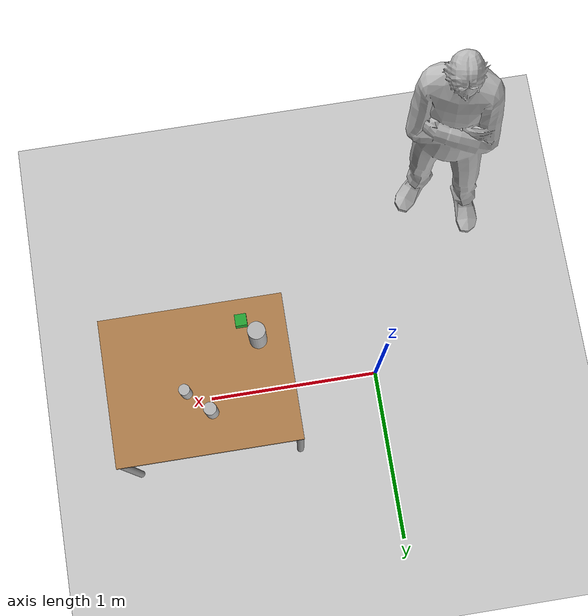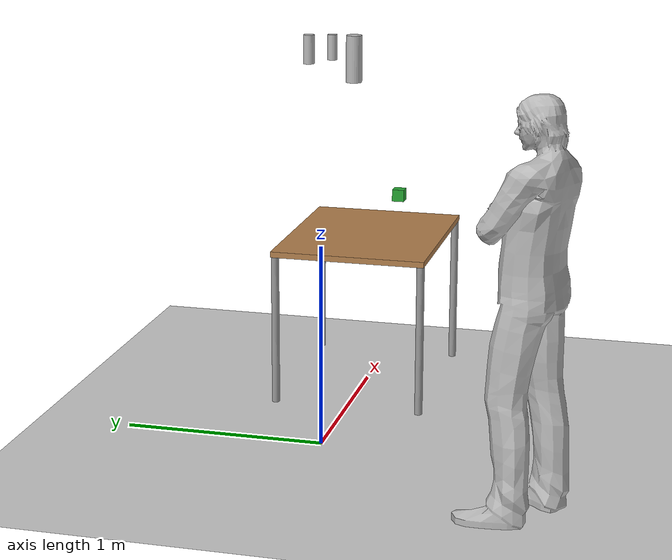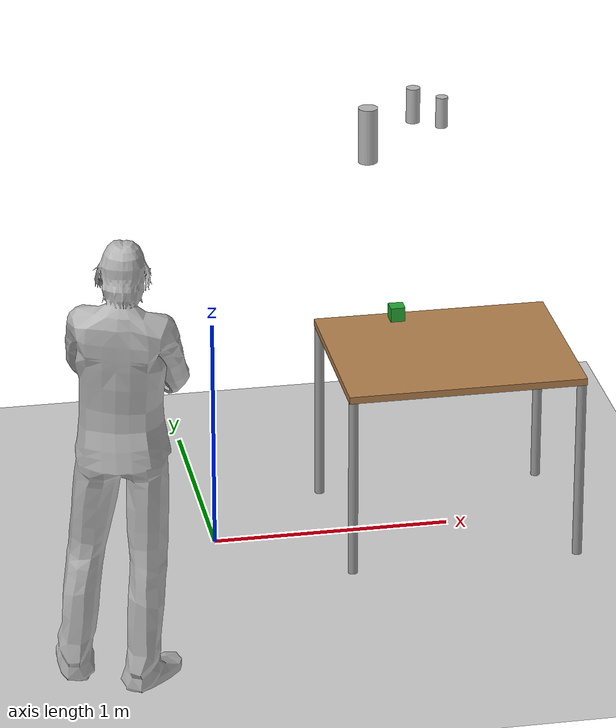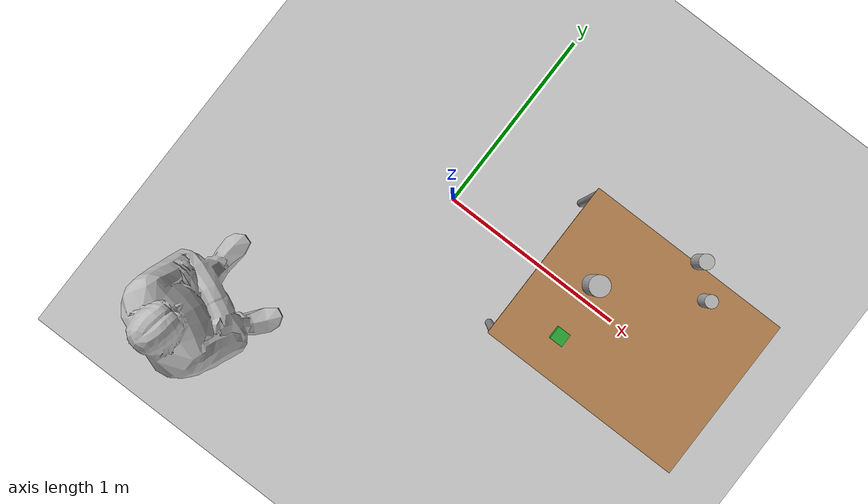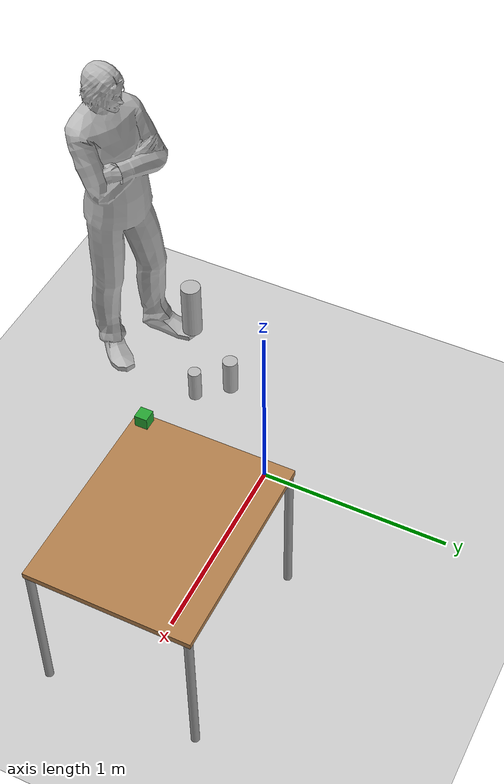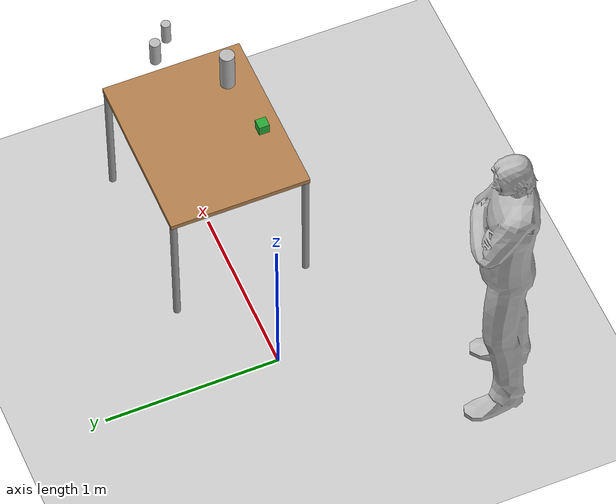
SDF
<sdf version="1.4">
 <world name="default">
  <physics type="ode">
   <gravity>0 0 -9.81</gravity>
   <ode>
    <solver><type>quick</type><iters>20</iters><sor>1.0</sor></solver>
    <constraints>
     <cfm>0.0</cfm>
     <erp>0.2</erp>
     <contact_max_correcting_vel>100.0</contact_max_correcting_vel>
     <contact_surface_layer>0.0</contact_surface_layer>
    </constraints>
   </ode>
   <real_time_update_rate>1000</real_time_update_rate>
   <max_step_size>0.001</max_step_size>
  </physics>
  <light type="directional" name="light1">
   <pose>-2 0 4 0 0 0</pose>
   <diffuse>1.0 1.0 1.0 1</diffuse>
   <specular>0.1 0.1 0.1 1</specular>
   <attenuation>
    <range>20</range>
    <constant>0.9</constant>
    <linear>0.01</linear>
    <quadratic>0.001</quadratic>
   </attenuation>
   <direction>0.2 0.0 -1.0</direction>
  </light>
  <include><uri>model://ground_plane</uri></include>
  <include>
   <uri>model://citizen_extras_male_03</uri>
   <pose>-0.586457 -0.999836 0.010904 0.01256 0.002342 2.82854</pose>
  </include>
  <include><uri>model://table_0m8</uri><name>table1</name><pose>1.0 0 0 0 0 0</pose></include>
  <include><uri>model://pringles</uri><pose>0.65 0 1.8 0 0 2.62</pose></include>
  <include><uri>model://biscuits_pack</uri><pose>0.9 0.3 1.8 0 0 1.5</pose></include>
  <include><uri>model://green_cube</uri><pose>0.73 -0.221 1.1 0 0 0</pose></include>
  <include><uri>model://bifrutas_tropical_can</uri><pose>1.0 0.2 1.8 0 0 -0.5</pose></include>
 </world>
</sdf>

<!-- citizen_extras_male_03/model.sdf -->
<sdf version="1.4">

 <model name="citizen_extras_male_03">

    <link name="link">

     <inertial>

       <mass>20</mass>

       <inertia>

         <ixx>0.0</ixx>

         <ixy>0.0</ixy>

         <ixz>0.0</ixz>

         <iyy>0.0</iyy>

         <iyz>0.0</iyz>

         <izz>0.0</izz>

       </inertia>

     </inertial>

     <collision name="collision">

       <pose>0 0 0 0 0 0</pose>

       <geometry>

         <mesh>

           <uri>model://citizen_extras_male_03/meshes/mesh.dae</uri>

         </mesh>

       </geometry>

     </collision>

     <visual name="visual">

       <pose>0 0 0 0 0 0</pose>

       <geometry>

         <mesh>

           <uri>model://citizen_extras_male_03/meshes/mesh.dae</uri>

         </mesh>

       </geometry>

     </visual>

    </link>

 </model>
</sdf>

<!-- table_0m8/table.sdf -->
<sdf version='1.4'>
<model name='table'>
      <static>1</static>
      <link name='link'>
        <collision name='surface'>
          <pose>0.000000 0.000000 0.800000 0.000000 0.000000 0.000000</pose>
          <geometry>
            <box>
              <size>1.000000 0.800000 0.030000</size>
            </box>
          </geometry>
          <surface>
            <bounce/>
            <friction>
              <ode/>
            </friction>
            <contact>
              <ode/>
            </contact>
          </surface>
        </collision>
        <visual name='visual1'>
          <pose>0.000000 0.000000 0.800000 0.000000 0.000000 0.000000</pose>
          <geometry>
            <box>
              <size>1.000000 0.800000 0.030000</size>
            </box>
          </geometry>
          <material>
            <script>
              <uri>file://media/materials/scripts/gazebo.material</uri>
              <name>Gazebo/Wood</name>
            </script>
          </material>
        </visual>
        <collision name='front_left_leg'>
          <pose>0.480000 0.380000 0.400000 0.000000 0.000000 0.000000</pose>
          <geometry>
            <cylinder>
              <radius>0.020000</radius>
              <length>0.800000</length>
            </cylinder>
          </geometry>
          <surface>
            <bounce/>
            <friction>
              <ode/>
            </friction>
            <contact>
              <ode/>
            </contact>
          </surface>
        </collision>
        <visual name='front_left_leg'>
          <pose>0.480000 0.380000 0.400000 0.000000 0.000000 0.000000</pose>
          <geometry>
            <cylinder>
              <radius>0.020000</radius>
              <length>0.800000</length>
            </cylinder>
          </geometry>
          <material>
            <script>
              <uri>file://media/materials/scripts/gazebo.material</uri>
              <name>Gazebo/Grey</name>
            </script>
          </material>
        </visual>
        <collision name='front_right_leg'>
          <pose>0.480000 -0.380000 0.400000 0.000000 0.000000 0.000000</pose>
          <geometry>
            <cylinder>
              <radius>0.020000</radius>
              <length>0.800000</length>
            </cylinder>
          </geometry>
          <surface>
            <bounce/>
            <friction>
              <ode/>
            </friction>
            <contact>
              <ode/>
            </contact>
          </surface>
        </collision>
        <visual name='front_right_leg'>
          <pose>0.480000 -0.380000 0.400000 0.000000 0.000000 0.000000</pose>
          <geometry>
            <cylinder>
              <radius>0.020000</radius>
              <length>0.800000</length>
            </cylinder>
          </geometry>
          <material>
            <script>
              <uri>file://media/materials/scripts/gazebo.material</uri>
              <name>Gazebo/Grey</name>
            </script>
          </material>
        </visual>
        <collision name='back_right_leg'>
          <pose>-0.480000 -0.380000 0.400000 0.000000 0.000000 0.000000</pose>
          <geometry>
            <cylinder>
              <radius>0.020000</radius>
              <length>0.800000</length>
            </cylinder>
          </geometry>
          <surface>
            <bounce/>
            <friction>
              <ode/>
            </friction>
            <contact>
              <ode/>
            </contact>
          </surface>
        </collision>
        <visual name='back_right_leg'>
          <pose>-0.480000 -0.380000 0.400000 0.000000 0.000000 0.000000</pose>
          <geometry>
            <cylinder>
              <radius>0.020000</radius>
              <length>0.800000</length>
            </cylinder>
          </geometry>
          <material>
            <script>
              <uri>file://media/materials/scripts/gazebo.material</uri>
              <name>Gazebo/Grey</name>
            </script>
          </material>
        </visual>
        <collision name='back_left_leg'>
          <pose>-0.480000 0.380000 0.400000 0.000000 0.000000 0.000000</pose>
          <geometry>
            <cylinder>
              <radius>0.020000</radius>
              <length>0.800000</length>
            </cylinder>
          </geometry>
          <surface>
            <bounce/>
            <friction>
              <ode/>
            </friction>
            <contact>
              <ode/>
            </contact>
          </surface>
        </collision>
        <visual name='back_left_leg'>
          <pose>-0.480000 0.380000 0.400000 0.000000 0.000000 0.000000</pose>
          <geometry>
            <cylinder>
              <radius>0.020000</radius>
              <length>0.800000</length>
            </cylinder>
          </geometry>
          <material>
            <script>
              <uri>file://media/materials/scripts/gazebo.material</uri>
              <name>Gazebo/Grey</name>
            </script>
          </material>
        </visual>
        <velocity_decay>
          <linear>0.000000</linear>
          <angular>0.000000</angular>
        </velocity_decay>
        <self_collide>0</self_collide>
        <kinematic>0</kinematic>
        <gravity>1</gravity>
      </link>
    </model>
</sdf>

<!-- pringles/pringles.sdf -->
<sdf version='1.4'>
  <model name="pringles">
      <static>0</static>
      <link name='link'>
        <inertial>
          <mass>0.25</mass>
          <inertia>
            <ixx>0.000000</ixx>
            <ixy>0.000000</ixy>
            <ixz>0.000000</ixz>
            <iyy>0.000000</iyy>
            <iyz>0.000000</iyz>
            <izz>0.000000</izz>
          </inertia>
        </inertial>
        <collision name='collision'>
          <geometry>
            <cylinder>
              <radius>0.04</radius>
              <length>0.235</length>
            </cylinder>
          </geometry>
          <surface>
            <bounce/>
            <friction>
              <ode/>
            </friction>
            <contact>
              <ode/>
            </contact>
          </surface>
        </collision>
        <visual name='visual'>
          <geometry>
            <cylinder>
              <radius>0.04</radius>
              <length>0.235</length>
            </cylinder>
          </geometry>
          <material>
            <script>
	      <uri>model://pringles/material/scripts</uri>
	      <uri>model://pringles/material/textures</uri>
              <name>Custom/pringles</name>
            </script>
          </material>
        </visual>
        <velocity_decay>
          <linear>0.000000</linear>
          <angular>0.000000</angular>
        </velocity_decay>
        <self_collide>0</self_collide>
        <kinematic>0</kinematic>
        <gravity>1</gravity>
      </link>
  </model>
</sdf>

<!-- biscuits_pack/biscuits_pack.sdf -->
<sdf version='1.4'>
  <model name="biscuits_pack">
      <static>0</static>
      <link name='link'>
        <inertial>
          <mass>0.01</mass>
          <inertia>
            <ixx>0.001</ixx>
            <ixy>0.000000</ixy>
            <ixz>0.000000</ixz>
	    <iyy>0.001</iyy>
            <iyz>0.000000</iyz>
            <izz>0.001</izz>
          </inertia>
        </inertial>
        <collision name='collision'>
          <geometry>
            <cylinder>
              <radius>0.029</radius>
              <length>0.15</length>
            </cylinder>
          </geometry>
          <surface>
            <bounce/>
	    <friction>
	      <ode>
                <mu>1000</mu>
                <mu2>1000</mu2>
                <fdir1>0 0 0</fdir1>
	      </ode>
            </friction>
	    <contact>
	      <ode>
                <kd>1</kd>
                <min_depth>0.01</min_depth>
                <max_vel>0</max_vel>
	      </ode>
            </contact>
          </surface>
	  <max_contacts>10</max_contacts>
        </collision>
        <visual name='visual'>
          <geometry>
            <cylinder>
              <radius>0.029</radius>
              <length>0.15</length>
            </cylinder>
          </geometry>
          <material>
            <script>
              <uri>model://biscuits_pack/material/scripts</uri>
              <uri>model://biscuits_pack/material/textures</uri>
              <name>Custom/biscuits_pack</name>
            </script>
          </material>
        </visual>
        <velocity_decay>
          <linear>0.000000</linear>
          <angular>0.000000</angular>
        </velocity_decay>
        <self_collide>0</self_collide>
        <kinematic>0</kinematic>
        <gravity>1</gravity>
      </link>
  </model>
</sdf>

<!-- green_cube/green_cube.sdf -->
<sdf version='1.4'>
  <model name="green_cube">
      <static>0</static>
      <link name='link'>
        <inertial>
          <mass>0.25</mass>
          <inertia>
            <ixx>0.000041667</ixx>
            <ixy>0.000000</ixy>
            <ixz>0.000000</ixz>
            <iyy>0.000041667</iyy>
            <iyz>0.000000</iyz>
            <izz>0.000041667</izz>
          </inertia>
        </inertial>
        <visual name='visual'>
          <geometry>
            <box>
              <size>0.060 0.060 0.060</size>
            </box>
          </geometry>
          <material>
            <script>
              <uri>file://media/materials/scripts/gazebo.material</uri>
              <name>Gazebo/Green</name>
            </script>
          </material>
        </visual>
        <collision name='collision'>
          <geometry>
            <box>
              <size>0.06 0.06 0.06</size>
            </box>
          </geometry>
          <surface>
            <friction>
              <ode>
                <mu>30.0</mu>
                <mu2>30.0</mu2>
              </ode>
            </friction>
            <contact>
              <ode>
                <kp>1000000.0</kp>
                <kd>100.0</kd>
                <max_vel>1.0</max_vel>
                <min_depth>0.0025</min_depth>
              </ode>
            </contact>
          </surface>
        </collision>
        <velocity_decay>
          <linear>0.000000</linear>
          <angular>0.000000</angular>
        </velocity_decay>
        <self_collide>0</self_collide>
        <kinematic>0</kinematic>
        <gravity>1</gravity>
      </link>
  </model>
</sdf>

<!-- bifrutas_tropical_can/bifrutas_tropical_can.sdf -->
<sdf version='1.4'>
  <model name="bifrutas_tropical_can">
      <static>0</static>
      <link name='link'>
        <inertial>
          <mass>0.25</mass>
          <inertia>
            <ixx>0.000000</ixx>
            <ixy>0.000000</ixy>
            <ixz>0.000000</ixz>
            <iyy>0.000000</iyy>
            <iyz>0.000000</iyz>
            <izz>0.000000</izz>
          </inertia>
        </inertial>
        <collision name='collision'>
          <geometry>
            <cylinder>
              <radius>0.025</radius>
              <length>0.132</length>
            </cylinder>
          </geometry>
          <surface>
            <bounce/>
            <friction>
              <ode/>
            </friction>
            <contact>
              <ode/>
            </contact>
          </surface>
        </collision>
        <visual name='visual'>
          <geometry>
            <cylinder>
              <radius>0.025</radius>
              <length>0.132</length>
            </cylinder>
          </geometry>
          <material>
            <script>
              <uri>model://bifrutas_tropical_can/material/scripts</uri>
              <uri>model://bifrutas_tropical_can/material/textures</uri>
              <name>Custom/bifrutas_tropical_can</name>
            </script>
          </material>
        </visual>
        <velocity_decay>
          <linear>0.000000</linear>
          <angular>0.000000</angular>
        </velocity_decay>
        <self_collide>0</self_collide>
        <kinematic>0</kinematic>
        <gravity>1</gravity>
      </link>
  </model>
</sdf>
